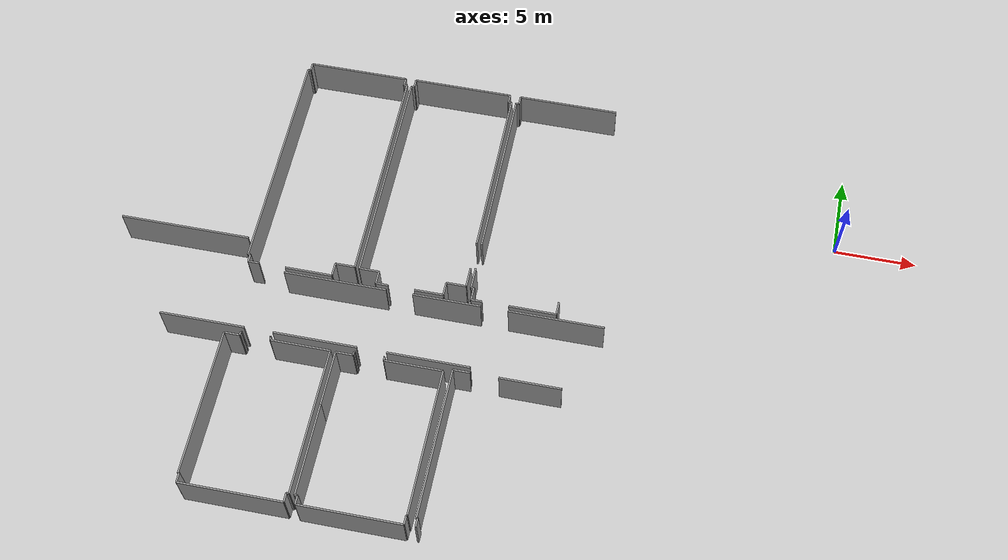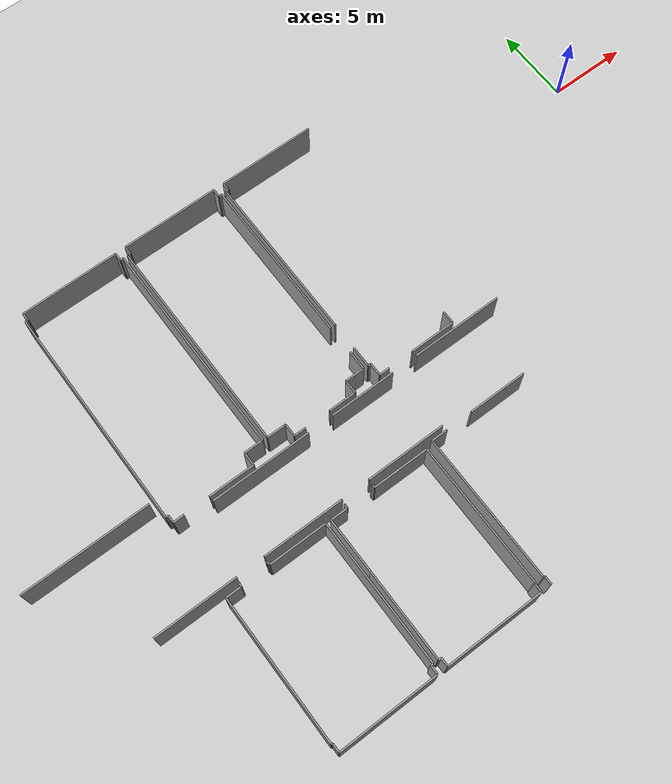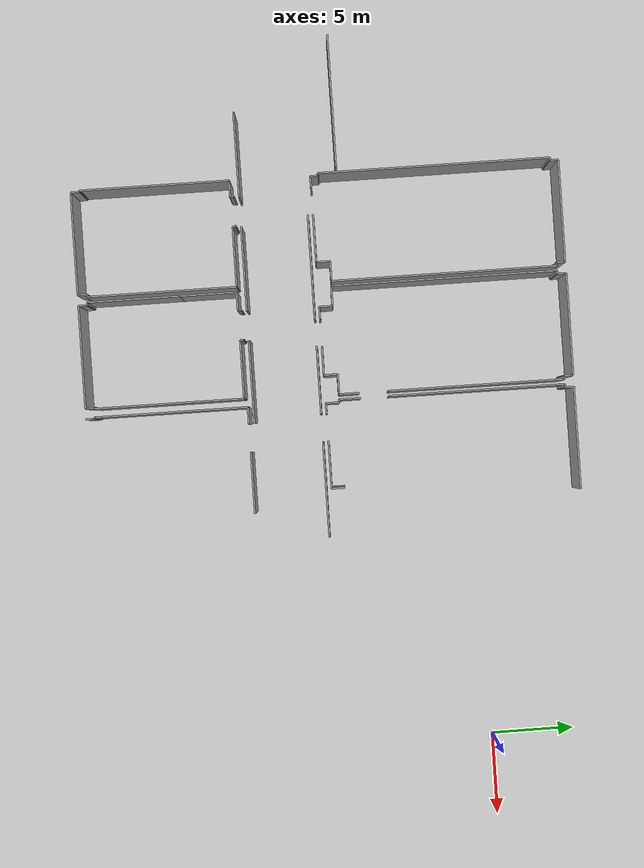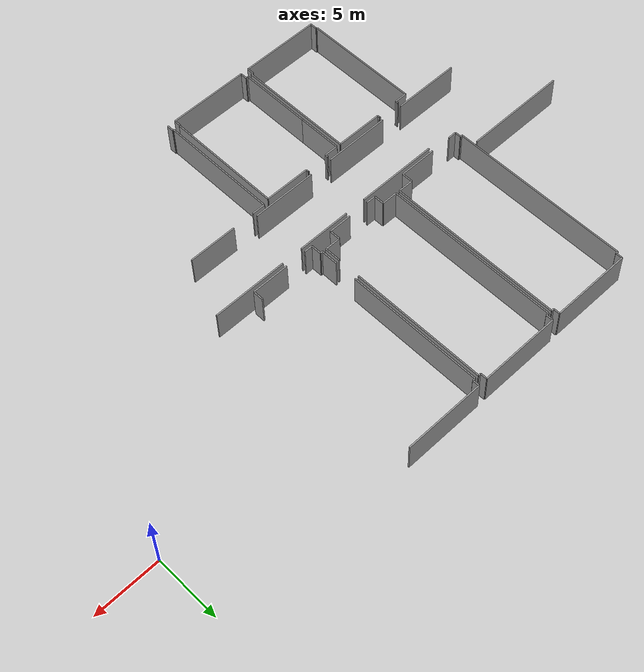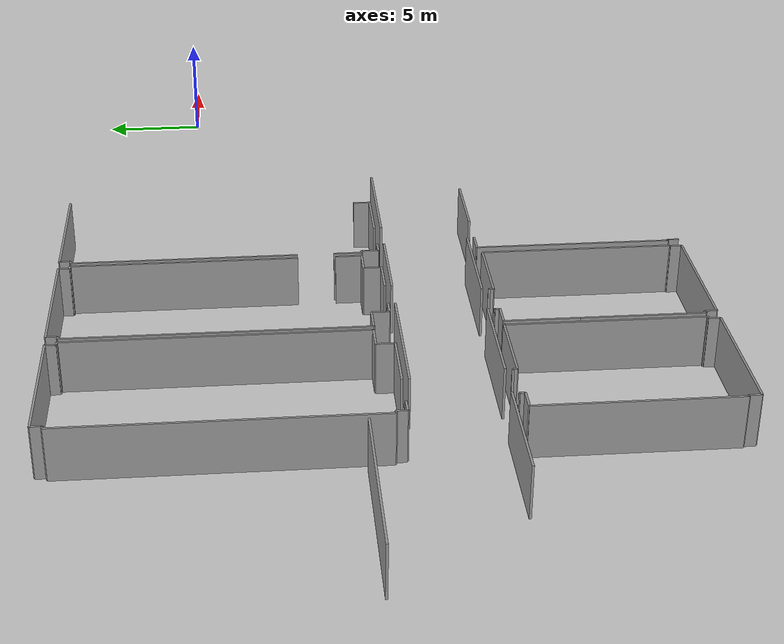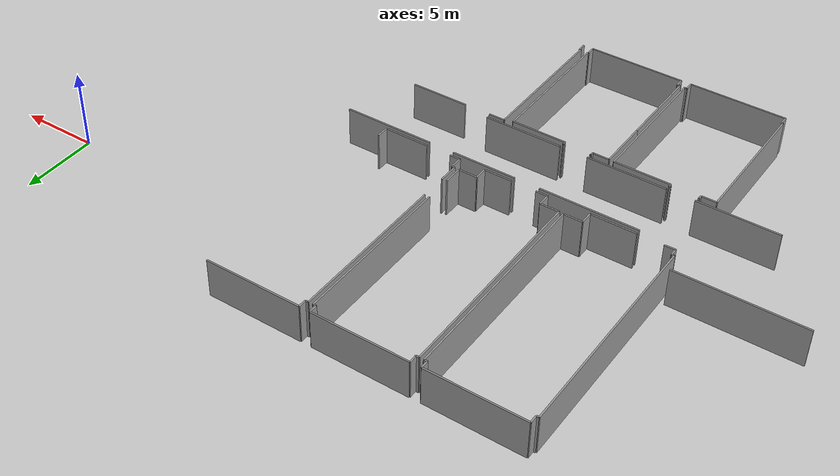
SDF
<sdf version="1.6">
 <world name="default">
  <model name="ground_plane">
   <static>1</static>
   <link name="link">
    <collision name="collision">
     <geometry><plane><normal>0 0 1</normal><size>100 100</size></plane></geometry>
     <surface><friction><ode><mu>100</mu><mu2>50</mu2></ode></friction></surface>
    </collision>
    <visual name="visual">
     <cast_shadows>0</cast_shadows>
     <geometry><plane><normal>0 0 1</normal><size>100 100</size></plane></geometry>
     <material>
      <script><uri>file://media/materials/scripts/gazebo.material</uri><name>Gazebo/Grey</name></script>
     </material>
    </visual>
   </link>
  </model>
  <model name="0510032192_A_40_1_203">
   <static>1</static>
   <link name="Wall_14">
    <collision name="Wall_14_Collision">
     <geometry><box><size>0.551449795701 0.1 2.5</size></box></geometry>
     <pose>0.27572489785 0 1.25 0 0 0</pose>
    </collision>
    <visual name="Wall_14_Visual">
     <pose>0.27572489785 0 1.25 0 0 0</pose>
     <geometry><box><size>0.551449795701 0.1 2.5</size></box></geometry>
     <material>
      <script><uri>file://media/materials/scripts/gazebo.material</uri><name>Gazebo/Grey</name></script>
      <ambient>1 1 1 1</ambient>
     </material>
    </visual>
    <pose>29.868142622 -46.7346648281 0 0 0 1.57079632679</pose>
   </link>
   <link name="Wall_15">
    <collision name="Wall_15_Collision">
     <geometry><box><size>0.0752381376019 0.1 2.5</size></box></geometry>
     <pose>0.037619068801 0 1.25 0 0 0</pose>
    </collision>
    <visual name="Wall_15_Visual">
     <pose>0.037619068801 0 1.25 0 0 0</pose>
     <geometry><box><size>0.0752381376019 0.1 2.5</size></box></geometry>
     <material>
      <script><uri>file://media/materials/scripts/gazebo.material</uri><name>Gazebo/Grey</name></script>
      <ambient>1 1 1 1</ambient>
     </material>
    </visual>
    <pose>29.868142622 -46.1832150324 0 0 0 3.14159265359</pose>
   </link>
   <link name="Wall_16">
    <collision name="Wall_16_Collision">
     <geometry><box><size>8.97557937814 0.1 2.5</size></box></geometry>
     <pose>4.48778968907 0 1.25 0 0 0</pose>
    </collision>
    <visual name="Wall_16_Visual">
     <pose>4.48778968907 0 1.25 0 0 0</pose>
     <geometry><box><size>8.97557937814 0.1 2.5</size></box></geometry>
     <material>
      <script><uri>file://media/materials/scripts/gazebo.material</uri><name>Gazebo/Grey</name></script>
      <ambient>1 1 1 1</ambient>
     </material>
    </visual>
    <pose>29.7929044844 -46.1832150324 0 0 0 1.57079632679</pose>
   </link>
   <link name="Wall_17">
    <collision name="Wall_17_Collision">
     <geometry><box><size>0.956108968208 0.1 2.5</size></box></geometry>
     <pose>0.478054484104 0 1.25 0 0 0</pose>
    </collision>
    <visual name="Wall_17_Visual">
     <pose>0.478054484104 0 1.25 0 0 0</pose>
     <geometry><box><size>0.956108968208 0.1 2.5</size></box></geometry>
     <material>
      <script><uri>file://media/materials/scripts/gazebo.material</uri><name>Gazebo/Grey</name></script>
      <ambient>1 1 1 1</ambient>
     </material>
    </visual>
    <pose>29.7929044844 -37.2076356542 0 0 0 0.0</pose>
   </link>
   <link name="Wall_18">
    <collision name="Wall_18_Collision">
     <geometry><box><size>0.220122389065 0.1 2.5</size></box></geometry>
     <pose>0.110061194533 0 1.25 0 0 0</pose>
    </collision>
    <visual name="Wall_18_Visual">
     <pose>0.110061194533 0 1.25 0 0 0</pose>
     <geometry><box><size>0.220122389065 0.1 2.5</size></box></geometry>
     <material>
      <script><uri>file://media/materials/scripts/gazebo.material</uri><name>Gazebo/Grey</name></script>
      <ambient>1 1 1 1</ambient>
     </material>
    </visual>
    <pose>30.7490134526 -37.2076356542 0 0 0 1.57079632679</pose>
   </link>
   <link name="Wall_19">
    <collision name="Wall_19_Collision">
     <geometry><box><size>0.0706628454504 0.1 2.5</size></box></geometry>
     <pose>0.0353314227252 0 1.25 0 0 0</pose>
    </collision>
    <visual name="Wall_19_Visual">
     <pose>0.0353314227252 0 1.25 0 0 0</pose>
     <geometry><box><size>0.0706628454504 0.1 2.5</size></box></geometry>
     <material>
      <script><uri>file://media/materials/scripts/gazebo.material</uri><name>Gazebo/Grey</name></script>
      <ambient>1 1 1 1</ambient>
     </material>
    </visual>
    <pose>30.7490134526 -36.9875132652 0 0 0 0.0</pose>
   </link>
   <link name="Wall_20">
    <collision name="Wall_20_Collision">
     <geometry><box><size>0.0831178074183 0.1 2.5</size></box></geometry>
     <pose>0.0415589037092 0 1.25 0 0 0</pose>
    </collision>
    <visual name="Wall_20_Visual">
     <pose>0.0415589037092 0 1.25 0 0 0</pose>
     <geometry><box><size>0.0831178074183 0.1 2.5</size></box></geometry>
     <material>
      <script><uri>file://media/materials/scripts/gazebo.material</uri><name>Gazebo/Grey</name></script>
      <ambient>1 1 1 1</ambient>
     </material>
    </visual>
    <pose>32.5064340046 -36.9875132652 0 0 0 0.0</pose>
   </link>
   <link name="Wall_21">
    <collision name="Wall_21_Collision">
     <geometry><box><size>0.186951520967 0.1 2.5</size></box></geometry>
     <pose>0.0934757604835 0 1.25 0 0 0</pose>
    </collision>
    <visual name="Wall_21_Visual">
     <pose>0.0934757604835 0 1.25 0 0 0</pose>
     <geometry><box><size>0.186951520967 0.1 2.5</size></box></geometry>
     <material>
      <script><uri>file://media/materials/scripts/gazebo.material</uri><name>Gazebo/Grey</name></script>
      <ambient>1 1 1 1</ambient>
     </material>
    </visual>
    <pose>32.589551812 -36.9875132652 0 0 0 -1.57079632679</pose>
   </link>
   <link name="Wall_22">
    <collision name="Wall_22_Collision">
     <geometry><box><size>3.60812622723 0.1 2.5</size></box></geometry>
     <pose>1.80406311361 0 1.25 0 0 0</pose>
    </collision>
    <visual name="Wall_22_Visual">
     <pose>1.80406311361 0 1.25 0 0 0</pose>
     <geometry><box><size>3.60812622723 0.1 2.5</size></box></geometry>
     <material>
      <script><uri>file://media/materials/scripts/gazebo.material</uri><name>Gazebo/Grey</name></script>
      <ambient>1 1 1 1</ambient>
     </material>
    </visual>
    <pose>32.589551812 -37.1744647861 0 0 0 0.0</pose>
   </link>
   <link name="Wall_23">
    <collision name="Wall_23_Collision">
     <geometry><box><size>9.00875024624 0.1 2.5</size></box></geometry>
     <pose>4.50437512312 0 1.25 0 0 0</pose>
    </collision>
    <visual name="Wall_23_Visual">
     <pose>4.50437512312 0 1.25 0 0 0</pose>
     <geometry><box><size>9.00875024624 0.1 2.5</size></box></geometry>
     <material>
      <script><uri>file://media/materials/scripts/gazebo.material</uri><name>Gazebo/Grey</name></script>
      <ambient>1 1 1 1</ambient>
     </material>
    </visual>
    <pose>36.1976780392 -37.1744647861 0 0 0 -1.57079632679</pose>
   </link>
   <link name="Wall_24">
    <collision name="Wall_24_Collision">
     <geometry><box><size>0.154034835766 0.1 2.5</size></box></geometry>
     <pose>0.077017417883 0 1.25 0 0 0</pose>
    </collision>
    <visual name="Wall_24_Visual">
     <pose>0.077017417883 0 1.25 0 0 0</pose>
     <geometry><box><size>0.154034835766 0.1 2.5</size></box></geometry>
     <material>
      <script><uri>file://media/materials/scripts/gazebo.material</uri><name>Gazebo/Grey</name></script>
      <ambient>1 1 1 1</ambient>
     </material>
    </visual>
    <pose>36.1976780392 -46.1832150324 0 0 0 3.14159265359</pose>
   </link>
   <link name="Wall_25">
    <collision name="Wall_25_Collision">
     <geometry><box><size>0.5420450285 0.1 2.5</size></box></geometry>
     <pose>0.27102251425 0 1.25 0 0 0</pose>
    </collision>
    <visual name="Wall_25_Visual">
     <pose>0.27102251425 0 1.25 0 0 0</pose>
     <geometry><box><size>0.5420450285 0.1 2.5</size></box></geometry>
     <material>
      <script><uri>file://media/materials/scripts/gazebo.material</uri><name>Gazebo/Grey</name></script>
      <ambient>1 1 1 1</ambient>
     </material>
    </visual>
    <pose>36.0436432035 -46.1832150324 0 0 0 -1.57079632679</pose>
   </link>
   <link name="Wall_26">
    <collision name="Wall_26_Collision">
     <geometry><box><size>6.17550774277 0.1 2.5</size></box></geometry>
     <pose>3.08775387139 0 1.25 0 0 0</pose>
    </collision>
    <visual name="Wall_26_Visual">
     <pose>3.08775387139 0 1.25 0 0 0</pose>
     <geometry><box><size>6.17550774277 0.1 2.5</size></box></geometry>
     <material>
      <script><uri>file://media/materials/scripts/gazebo.material</uri><name>Gazebo/Grey</name></script>
      <ambient>1 1 1 1</ambient>
     </material>
    </visual>
    <pose>36.0436432035 -46.7252600609 0 0 0 -3.140069739</pose>
   </link>
   <link name="Wall_27">
    <collision name="Wall_27_Collision">
     <geometry><box><size>0.526539871765 0.1 2.5</size></box></geometry>
     <pose>0.263269935882 0 1.25 0 0 0</pose>
    </collision>
    <visual name="Wall_27_Visual">
     <pose>0.263269935882 0 1.25 0 0 0</pose>
     <geometry><box><size>0.526539871765 0.1 2.5</size></box></geometry>
     <material>
      <script><uri>file://media/materials/scripts/gazebo.material</uri><name>Gazebo/Grey</name></script>
      <ambient>1 1 1 1</ambient>
     </material>
    </visual>
    <pose>36.6953681522 -46.7264038839 0 0 0 1.57079632679</pose>
   </link>
   <link name="Wall_28">
    <collision name="Wall_28_Collision">
     <geometry><box><size>0.175513290588 0.1 2.5</size></box></geometry>
     <pose>0.0877566452941 0 1.25 0 0 0</pose>
    </collision>
    <visual name="Wall_28_Visual">
     <pose>0.0877566452941 0 1.25 0 0 0</pose>
     <geometry><box><size>0.175513290588 0.1 2.5</size></box></geometry>
     <material>
      <script><uri>file://media/materials/scripts/gazebo.material</uri><name>Gazebo/Grey</name></script>
      <ambient>1 1 1 1</ambient>
     </material>
    </visual>
    <pose>36.6953681522 -46.1998640121 0 0 0 3.14159265359</pose>
   </link>
   <link name="Wall_29">
    <collision name="Wall_29_Collision">
     <geometry><box><size>5.5946926611 0.1 2.5</size></box></geometry>
     <pose>2.79734633055 0 1.25 0 0 0</pose>
    </collision>
    <visual name="Wall_29_Visual">
     <pose>2.79734633055 0 1.25 0 0 0</pose>
     <geometry><box><size>5.5946926611 0.1 2.5</size></box></geometry>
     <material>
      <script><uri>file://media/materials/scripts/gazebo.material</uri><name>Gazebo/Grey</name></script>
      <ambient>1 1 1 1</ambient>
     </material>
    </visual>
    <pose>36.5198548616 -46.1998640121 0 0 0 1.57079632679</pose>
   </link>
   <link name="Wall_30">
    <collision name="Wall_30_Collision">
     <geometry><box><size>3.4035089949 0.1 2.5</size></box></geometry>
     <pose>1.70175449745 0 1.25 0 0 0</pose>
    </collision>
    <visual name="Wall_30_Visual">
     <pose>1.70175449745 0 1.25 0 0 0</pose>
     <geometry><box><size>3.4035089949 0.1 2.5</size></box></geometry>
     <material>
      <script><uri>file://media/materials/scripts/gazebo.material</uri><name>Gazebo/Grey</name></script>
      <ambient>1 1 1 1</ambient>
     </material>
    </visual>
    <pose>36.5198548616 -40.605171351 0 0 0 1.57079632679</pose>
   </link>
   <link name="Wall_31">
    <collision name="Wall_31_Collision">
     <geometry><box><size>1.06642434564 0.1 2.5</size></box></geometry>
     <pose>0.533212172819 0 1.25 0 0 0</pose>
    </collision>
    <visual name="Wall_31_Visual">
     <pose>0.533212172819 0 1.25 0 0 0</pose>
     <geometry><box><size>1.06642434564 0.1 2.5</size></box></geometry>
     <material>
      <script><uri>file://media/materials/scripts/gazebo.material</uri><name>Gazebo/Grey</name></script>
      <ambient>1 1 1 1</ambient>
     </material>
    </visual>
    <pose>36.5198548616 -37.2016623561 0 0 0 0.0</pose>
   </link>
   <link name="Wall_32">
    <collision name="Wall_32_Collision">
     <geometry><box><size>0.215038731119 0.1 2.5</size></box></geometry>
     <pose>0.107519365559 0 1.25 0 0 0</pose>
    </collision>
    <visual name="Wall_32_Visual">
     <pose>0.107519365559 0 1.25 0 0 0</pose>
     <geometry><box><size>0.215038731119 0.1 2.5</size></box></geometry>
     <material>
      <script><uri>file://media/materials/scripts/gazebo.material</uri><name>Gazebo/Grey</name></script>
      <ambient>1 1 1 1</ambient>
     </material>
    </visual>
    <pose>37.5862792072 -37.2016623561 0 0 0 1.57079632679</pose>
   </link>
   <link name="Wall_33">
    <collision name="Wall_33_Collision">
     <geometry><box><size>0.0669771934395 0.1 2.5</size></box></geometry>
     <pose>0.0334885967198 0 1.25 0 0 0</pose>
    </collision>
    <visual name="Wall_33_Visual">
     <pose>0.0334885967198 0 1.25 0 0 0</pose>
     <geometry><box><size>0.0669771934395 0.1 2.5</size></box></geometry>
     <material>
      <script><uri>file://media/materials/scripts/gazebo.material</uri><name>Gazebo/Grey</name></script>
      <ambient>1 1 1 1</ambient>
     </material>
    </visual>
    <pose>37.5862792072 -36.986623625 0 0 0 0.0</pose>
   </link>
   <link name="Wall_34">
    <collision name="Wall_34_Collision">
     <geometry><box><size>0.0621477183908 0.1 2.5</size></box></geometry>
     <pose>0.0310738591954 0 1.25 0 0 0</pose>
    </collision>
    <visual name="Wall_34_Visual">
     <pose>0.0310738591954 0 1.25 0 0 0</pose>
     <geometry><box><size>0.0621477183908 0.1 2.5</size></box></geometry>
     <material>
      <script><uri>file://media/materials/scripts/gazebo.material</uri><name>Gazebo/Grey</name></script>
      <ambient>1 1 1 1</ambient>
     </material>
    </visual>
    <pose>39.3445893993 -36.986623625 0 0 0 0.0</pose>
   </link>
   <link name="Wall_35">
    <collision name="Wall_35_Collision">
     <geometry><box><size>0.195975013821 0.1 2.5</size></box></geometry>
     <pose>0.0979875069106 0 1.25 0 0 0</pose>
    </collision>
    <visual name="Wall_35_Visual">
     <pose>0.0979875069106 0 1.25 0 0 0</pose>
     <geometry><box><size>0.195975013821 0.1 2.5</size></box></geometry>
     <material>
      <script><uri>file://media/materials/scripts/gazebo.material</uri><name>Gazebo/Grey</name></script>
      <ambient>1 1 1 1</ambient>
     </material>
    </visual>
    <pose>39.4067371177 -36.986623625 0 0 0 -1.57079632679</pose>
   </link>
   <link name="Wall_36">
    <collision name="Wall_36_Collision">
     <geometry><box><size>3.51522237826 0.1 2.5</size></box></geometry>
     <pose>1.75761118913 0 1.25 0 0 0</pose>
    </collision>
    <visual name="Wall_36_Visual">
     <pose>1.75761118913 0 1.25 0 0 0</pose>
     <geometry><box><size>3.51522237826 0.1 2.5</size></box></geometry>
     <material>
      <script><uri>file://media/materials/scripts/gazebo.material</uri><name>Gazebo/Grey</name></script>
      <ambient>1 1 1 1</ambient>
     </material>
    </visual>
    <pose>39.4067371177 -37.1825986389 0 0 0 0.0</pose>
   </link>
   <link name="Wall_37">
    <collision name="Wall_37_Collision">
     <geometry><box><size>8.99438891254 0.1 2.5</size></box></geometry>
     <pose>4.49719445627 0 1.25 0 0 0</pose>
    </collision>
    <visual name="Wall_37_Visual">
     <pose>4.49719445627 0 1.25 0 0 0</pose>
     <geometry><box><size>8.99438891254 0.1 2.5</size></box></geometry>
     <material>
      <script><uri>file://media/materials/scripts/gazebo.material</uri><name>Gazebo/Grey</name></script>
      <ambient>1 1 1 1</ambient>
     </material>
    </visual>
    <pose>42.921959496 -37.1825986389 0 0 0 -1.57079632679</pose>
   </link>
   <link name="Wall_38">
    <collision name="Wall_38_Collision">
     <geometry><box><size>0.0536325913311 0.1 2.5</size></box></geometry>
     <pose>0.0268162956655 0 1.25 0 0 0</pose>
    </collision>
    <visual name="Wall_38_Visual">
     <pose>0.0268162956655 0 1.25 0 0 0</pose>
     <geometry><box><size>0.0536325913311 0.1 2.5</size></box></geometry>
     <material>
      <script><uri>file://media/materials/scripts/gazebo.material</uri><name>Gazebo/Grey</name></script>
      <ambient>1 1 1 1</ambient>
     </material>
    </visual>
    <pose>42.921959496 -46.1769875514 0 0 0 3.14159265359</pose>
   </link>
   <link name="Wall_39">
    <collision name="Wall_39_Collision">
     <geometry><box><size>0.544968131819 0.1 2.5</size></box></geometry>
     <pose>0.27248406591 0 1.25 0 0 0</pose>
    </collision>
    <visual name="Wall_39_Visual">
     <pose>0.27248406591 0 1.25 0 0 0</pose>
     <geometry><box><size>0.544968131819 0.1 2.5</size></box></geometry>
     <material>
      <script><uri>file://media/materials/scripts/gazebo.material</uri><name>Gazebo/Grey</name></script>
      <ambient>1 1 1 1</ambient>
     </material>
    </visual>
    <pose>42.8683269046 -46.1769875514 0 0 0 -1.57079632679</pose>
   </link>
   <link name="Wall_40">
    <collision name="Wall_40_Collision">
     <geometry><box><size>6.17296035514 0.1 2.5</size></box></geometry>
     <pose>3.08648017757 0 1.25 0 0 0</pose>
    </collision>
    <visual name="Wall_40_Visual">
     <pose>3.08648017757 0 1.25 0 0 0</pose>
     <geometry><box><size>6.17296035514 0.1 2.5</size></box></geometry>
     <material>
      <script><uri>file://media/materials/scripts/gazebo.material</uri><name>Gazebo/Grey</name></script>
      <ambient>1 1 1 1</ambient>
     </material>
    </visual>
    <pose>42.8683269046 -46.7219556832 0 0 0 -3.14087205912</pose>
   </link>
   <link name="Wall_41">
    <collision name="Wall_41_Collision">
     <geometry><box><size>0.534800815927 0.1 2.5</size></box></geometry>
     <pose>0.267400407964 0 1.25 0 0 0</pose>
    </collision>
    <visual name="Wall_41_Visual">
     <pose>0.267400407964 0 1.25 0 0 0</pose>
     <geometry><box><size>0.534800815927 0.1 2.5</size></box></geometry>
     <material>
      <script><uri>file://media/materials/scripts/gazebo.material</uri><name>Gazebo/Grey</name></script>
      <ambient>1 1 1 1</ambient>
     </material>
    </visual>
    <pose>43.5225936823 -46.7346648281 0 0 0 1.57079632679</pose>
   </link>
   <link name="Wall_42">
    <collision name="Wall_42_Collision">
     <geometry><box><size>0.0751110461533 0.1 2.5</size></box></geometry>
     <pose>0.0375555230766 0 1.25 0 0 0</pose>
    </collision>
    <visual name="Wall_42_Visual">
     <pose>0.0375555230766 0 1.25 0 0 0</pose>
     <geometry><box><size>0.0751110461533 0.1 2.5</size></box></geometry>
     <material>
      <script><uri>file://media/materials/scripts/gazebo.material</uri><name>Gazebo/Grey</name></script>
      <ambient>1 1 1 1</ambient>
     </material>
    </visual>
    <pose>43.5225936823 -46.1998640121 0 0 0 3.14159265359</pose>
   </link>
   <link name="Wall_43">
    <collision name="Wall_43_Collision">
     <geometry><box><size>9.2053607173 0.1 2.5</size></box></geometry>
     <pose>4.60268035865 0 1.25 0 0 0</pose>
    </collision>
    <visual name="Wall_43_Visual">
     <pose>4.60268035865 0 1.25 0 0 0</pose>
     <geometry><box><size>9.2053607173 0.1 2.5</size></box></geometry>
     <material>
      <script><uri>file://media/materials/scripts/gazebo.material</uri><name>Gazebo/Grey</name></script>
      <ambient>1 1 1 1</ambient>
     </material>
    </visual>
    <pose>43.4474826361 -46.1998640121 0 0 0 1.57079632679</pose>
   </link>
   <link name="Wall_44">
    <collision name="Wall_44_Collision">
     <geometry><box><size>1.02562799062 0.1 2.5</size></box></geometry>
     <pose>0.51281399531 0 1.25 0 0 0</pose>
    </collision>
    <visual name="Wall_44_Visual">
     <pose>0.51281399531 0 1.25 0 0 0</pose>
     <geometry><box><size>1.02562799062 0.1 2.5</size></box></geometry>
     <material>
      <script><uri>file://media/materials/scripts/gazebo.material</uri><name>Gazebo/Grey</name></script>
      <ambient>1 1 1 1</ambient>
     </material>
    </visual>
    <pose>43.4474826361 -36.9945032948 0 0 0 0.0</pose>
   </link>
   <link name="Wall_45">
    <collision name="Wall_45_Collision">
     <geometry><box><size>3.69785278998 0.1 2.5</size></box></geometry>
     <pose>1.84892639499 0 1.25 0 0 0</pose>
    </collision>
    <visual name="Wall_45_Visual">
     <pose>1.84892639499 0 1.25 0 0 0</pose>
     <geometry><box><size>3.69785278998 0.1 2.5</size></box></geometry>
     <material>
      <script><uri>file://media/materials/scripts/gazebo.material</uri><name>Gazebo/Grey</name></script>
      <ambient>1 1 1 1</ambient>
     </material>
    </visual>
    <pose>46.1598683333 -36.9945032948 0 0 0 0.0</pose>
   </link>
   <link name="Wall_212">
    <collision name="Wall_212_Collision">
     <geometry><box><size>7.94296135785 0.1 2.5</size></box></geometry>
     <pose>3.97148067892 0 1.25 0 0 0</pose>
    </collision>
    <visual name="Wall_212_Visual">
     <pose>3.97148067892 0 1.25 0 0 0</pose>
     <geometry><box><size>7.94296135785 0.1 2.5</size></box></geometry>
     <material>
      <script><uri>file://media/materials/scripts/gazebo.material</uri><name>Gazebo/Grey</name></script>
      <ambient>1 1 1 1</ambient>
     </material>
    </visual>
    <pose>29.404131743 -30.7404601981 0 0 0 3.14159265359</pose>
   </link>
   <link name="Wall_221">
    <collision name="Wall_221_Collision">
     <geometry><box><size>6.26624387578 0.1 2.5</size></box></geometry>
     <pose>3.13312193789 0 1.25 0 0 0</pose>
    </collision>
    <visual name="Wall_221_Visual">
     <pose>3.13312193789 0 1.25 0 0 0</pose>
     <geometry><box><size>6.26624387578 0.1 2.5</size></box></geometry>
     <material>
      <script><uri>file://media/materials/scripts/gazebo.material</uri><name>Gazebo/Grey</name></script>
      <ambient>1 1 1 1</ambient>
     </material>
    </visual>
    <pose>32.1706583972 -32.6294203994 0 0 0 0.0</pose>
   </link>
   <link name="Wall_222">
    <collision name="Wall_222_Collision">
     <geometry><box><size>4.11712747908 0.1 2.5</size></box></geometry>
     <pose>2.05856373954 0 1.25 0 0 0</pose>
    </collision>
    <visual name="Wall_222_Visual">
     <pose>2.05856373954 0 1.25 0 0 0</pose>
     <geometry><box><size>4.11712747908 0.1 2.5</size></box></geometry>
     <material>
      <script><uri>file://media/materials/scripts/gazebo.material</uri><name>Gazebo/Grey</name></script>
      <ambient>1 1 1 1</ambient>
     </material>
    </visual>
    <pose>40.0489302077 -32.6294203994 0 0 0 0.0</pose>
   </link>
   <link name="Wall_223">
    <collision name="Wall_223_Collision">
     <geometry><box><size>5.76880794576 0.1 2.5</size></box></geometry>
     <pose>2.88440397288 0 1.25 0 0 0</pose>
    </collision>
    <visual name="Wall_223_Visual">
     <pose>2.88440397288 0 1.25 0 0 0</pose>
     <geometry><box><size>5.76880794576 0.1 2.5</size></box></geometry>
     <material>
      <script><uri>file://media/materials/scripts/gazebo.material</uri><name>Gazebo/Grey</name></script>
      <ambient>1 1 1 1</ambient>
     </material>
    </visual>
    <pose>45.8192632509 -32.6294203994 0 0 0 0.0</pose>
   </link>
   <link name="Wall_246">
    <collision name="Wall_246_Collision">
     <geometry><box><size>4.99037282276 0.1 2.5</size></box></geometry>
     <pose>2.49518641138 0 1.25 0 0 0</pose>
    </collision>
    <visual name="Wall_246_Visual">
     <pose>2.49518641138 0 1.25 0 0 0</pose>
     <geometry><box><size>4.99037282276 0.1 2.5</size></box></geometry>
     <material>
      <script><uri>file://media/materials/scripts/gazebo.material</uri><name>Gazebo/Grey</name></script>
      <ambient>1 1 1 1</ambient>
     </material>
    </visual>
    <pose>44.426722248 -36.6643197112 0 0 0 3.14159265359</pose>
   </link>
   <link name="Wall_247">
    <collision name="Wall_247_Collision">
     <geometry><box><size>5.04629306017 0.1 2.5</size></box></geometry>
     <pose>2.52314653009 0 1.25 0 0 0</pose>
    </collision>
    <visual name="Wall_247_Visual">
     <pose>2.52314653009 0 1.25 0 0 0</pose>
     <geometry><box><size>5.04629306017 0.1 2.5</size></box></geometry>
     <material>
      <script><uri>file://media/materials/scripts/gazebo.material</uri><name>Gazebo/Grey</name></script>
      <ambient>1 1 1 1</ambient>
     </material>
    </visual>
    <pose>37.6480456512 -36.6643197112 0 0 0 3.14159265359</pose>
   </link>
   <link name="Wall_248">
    <collision name="Wall_248_Collision">
     <geometry><box><size>5.14949131648 0.1 2.5</size></box></geometry>
     <pose>2.57474565824 0 1.25 0 0 0</pose>
    </collision>
    <visual name="Wall_248_Visual">
     <pose>2.57474565824 0 1.25 0 0 0</pose>
     <geometry><box><size>5.14949131648 0.1 2.5</size></box></geometry>
     <material>
      <script><uri>file://media/materials/scripts/gazebo.material</uri><name>Gazebo/Grey</name></script>
      <ambient>1 1 1 1</ambient>
     </material>
    </visual>
    <pose>30.8543722636 -36.6643197112 0 0 0 3.14159265359</pose>
   </link>
   <link name="Wall_251">
    <collision name="Wall_251_Collision">
     <geometry><box><size>0.480532767353 0.1 2.5</size></box></geometry>
     <pose>0.240266383676 0 1.25 0 0 0</pose>
    </collision>
    <visual name="Wall_251_Visual">
     <pose>0.240266383676 0 1.25 0 0 0</pose>
     <geometry><box><size>0.480532767353 0.1 2.5</size></box></geometry>
     <material>
      <script><uri>file://media/materials/scripts/gazebo.material</uri><name>Gazebo/Grey</name></script>
      <ambient>1 1 1 1</ambient>
     </material>
    </visual>
    <pose>29.861915141 -32.3302471293 0 0 0 1.57079632679</pose>
   </link>
   <link name="Wall_252">
    <collision name="Wall_252_Collision">
     <geometry><box><size>0.153780652869 0.1 2.5</size></box></geometry>
     <pose>0.0768903264344 0 1.25 0 0 0</pose>
    </collision>
    <visual name="Wall_252_Visual">
     <pose>0.0768903264344 0 1.25 0 0 0</pose>
     <geometry><box><size>0.153780652869 0.1 2.5</size></box></geometry>
     <material>
      <script><uri>file://media/materials/scripts/gazebo.material</uri><name>Gazebo/Grey</name></script>
      <ambient>1 1 1 1</ambient>
     </material>
    </visual>
    <pose>29.861915141 -31.849714362 0 0 0 3.14159265359</pose>
   </link>
   <link name="Wall_253">
    <collision name="Wall_253_Collision">
     <geometry><box><size>13.9344335216 0.1 2.5</size></box></geometry>
     <pose>6.96721676082 0 1.25 0 0 0</pose>
    </collision>
    <visual name="Wall_253_Visual">
     <pose>6.96721676082 0 1.25 0 0 0</pose>
     <geometry><box><size>13.9344335216 0.1 2.5</size></box></geometry>
     <material>
      <script><uri>file://media/materials/scripts/gazebo.material</uri><name>Gazebo/Grey</name></script>
      <ambient>1 1 1 1</ambient>
     </material>
    </visual>
    <pose>29.7081344882 -31.849714362 0 0 0 1.57079632679</pose>
   </link>
   <link name="Wall_254">
    <collision name="Wall_254_Collision">
     <geometry><box><size>0.163312511518 0.1 2.5</size></box></geometry>
     <pose>0.0816562557588 0 1.25 0 0 0</pose>
    </collision>
    <visual name="Wall_254_Visual">
     <pose>0.0816562557588 0 1.25 0 0 0</pose>
     <geometry><box><size>0.163312511518 0.1 2.5</size></box></geometry>
     <material>
      <script><uri>file://media/materials/scripts/gazebo.material</uri><name>Gazebo/Grey</name></script>
      <ambient>1 1 1 1</ambient>
     </material>
    </visual>
    <pose>29.7081344882 -17.9152808403 0 0 0 0.0</pose>
   </link>
   <link name="Wall_255">
    <collision name="Wall_255_Collision">
     <geometry><box><size>0.509255434748 0.1 2.5</size></box></geometry>
     <pose>0.254627717374 0 1.25 0 0 0</pose>
    </collision>
    <visual name="Wall_255_Visual">
     <pose>0.254627717374 0 1.25 0 0 0</pose>
     <geometry><box><size>0.509255434748 0.1 2.5</size></box></geometry>
     <material>
      <script><uri>file://media/materials/scripts/gazebo.material</uri><name>Gazebo/Grey</name></script>
      <ambient>1 1 1 1</ambient>
     </material>
    </visual>
    <pose>29.8714469997 -17.9152808403 0 0 0 1.57079632679</pose>
   </link>
   <link name="Wall_256">
    <collision name="Wall_256_Collision">
     <geometry><box><size>6.15542013256 0.1 2.5</size></box></geometry>
     <pose>3.07771006628 0 1.25 0 0 0</pose>
    </collision>
    <visual name="Wall_256_Visual">
     <pose>3.07771006628 0 1.25 0 0 0</pose>
     <geometry><box><size>6.15542013256 0.1 2.5</size></box></geometry>
     <material>
      <script><uri>file://media/materials/scripts/gazebo.material</uri><name>Gazebo/Grey</name></script>
      <ambient>1 1 1 1</ambient>
     </material>
    </visual>
    <pose>29.8714469997 -17.4060254056 0 0 0 0.0</pose>
   </link>
   <link name="Wall_257">
    <collision name="Wall_257_Collision">
     <geometry><box><size>0.498833935959 0.1 2.5</size></box></geometry>
     <pose>0.249416967979 0 1.25 0 0 0</pose>
    </collision>
    <visual name="Wall_257_Visual">
     <pose>0.249416967979 0 1.25 0 0 0</pose>
     <geometry><box><size>0.498833935959 0.1 2.5</size></box></geometry>
     <material>
      <script><uri>file://media/materials/scripts/gazebo.material</uri><name>Gazebo/Grey</name></script>
      <ambient>1 1 1 1</ambient>
     </material>
    </visual>
    <pose>36.0268671322 -17.4060254056 0 0 0 -1.57079632679</pose>
   </link>
   <link name="Wall_258">
    <collision name="Wall_258_Collision">
     <geometry><box><size>0.200550305973 0.1 2.5</size></box></geometry>
     <pose>0.100275152986 0 1.25 0 0 0</pose>
    </collision>
    <visual name="Wall_258_Visual">
     <pose>0.100275152986 0 1.25 0 0 0</pose>
     <geometry><box><size>0.200550305973 0.1 2.5</size></box></geometry>
     <material>
      <script><uri>file://media/materials/scripts/gazebo.material</uri><name>Gazebo/Grey</name></script>
      <ambient>1 1 1 1</ambient>
     </material>
    </visual>
    <pose>36.0268671322 -17.9048593415 0 0 0 0.0</pose>
   </link>
   <link name="Wall_259">
    <collision name="Wall_259_Collision">
     <geometry><box><size>13.5700623384 0.1 2.5</size></box></geometry>
     <pose>6.78503116918 0 1.25 0 0 0</pose>
    </collision>
    <visual name="Wall_259_Visual">
     <pose>6.78503116918 0 1.25 0 0 0</pose>
     <geometry><box><size>13.5700623384 0.1 2.5</size></box></geometry>
     <material>
      <script><uri>file://media/materials/scripts/gazebo.material</uri><name>Gazebo/Grey</name></script>
      <ambient>1 1 1 1</ambient>
     </material>
    </visual>
    <pose>36.2274174382 -17.9048593415 0 0 0 -1.57079632679</pose>
   </link>
   <link name="Wall_260">
    <collision name="Wall_260_Collision">
     <geometry><box><size>1.19542216602 0.1 2.5</size></box></geometry>
     <pose>0.59771108301 0 1.25 0 0 0</pose>
    </collision>
    <visual name="Wall_260_Visual">
     <pose>0.59771108301 0 1.25 0 0 0</pose>
     <geometry><box><size>1.19542216602 0.1 2.5</size></box></geometry>
     <material>
      <script><uri>file://media/materials/scripts/gazebo.material</uri><name>Gazebo/Grey</name></script>
      <ambient>1 1 1 1</ambient>
     </material>
    </visual>
    <pose>36.2274174382 -31.4749216799 0 0 0 3.14159265359</pose>
   </link>
   <link name="Wall_261">
    <collision name="Wall_261_Collision">
     <geometry><box><size>0.838803561102 0.1 2.5</size></box></geometry>
     <pose>0.419401780551 0 1.25 0 0 0</pose>
    </collision>
    <visual name="Wall_261_Visual">
     <pose>0.419401780551 0 1.25 0 0 0</pose>
     <geometry><box><size>0.838803561102 0.1 2.5</size></box></geometry>
     <material>
      <script><uri>file://media/materials/scripts/gazebo.material</uri><name>Gazebo/Grey</name></script>
      <ambient>1 1 1 1</ambient>
     </material>
    </visual>
    <pose>35.0319952722 -31.4749216799 0 0 0 -1.57079632679</pose>
   </link>
   <link name="Wall_262">
    <collision name="Wall_262_Collision">
     <geometry><box><size>2.87417311126 0.1 2.5</size></box></geometry>
     <pose>1.43708655563 0 1.25 0 0 0</pose>
    </collision>
    <visual name="Wall_262_Visual">
     <pose>1.43708655563 0 1.25 0 0 0</pose>
     <geometry><box><size>2.87417311126 0.1 2.5</size></box></geometry>
     <material>
      <script><uri>file://media/materials/scripts/gazebo.material</uri><name>Gazebo/Grey</name></script>
      <ambient>1 1 1 1</ambient>
     </material>
    </visual>
    <pose>35.0319952722 -32.313725241 0 0 0 3.14159265359</pose>
   </link>
   <link name="Wall_263">
    <collision name="Wall_263_Collision">
     <geometry><box><size>0.675311914168 0.1 2.5</size></box></geometry>
     <pose>0.337655957084 0 1.25 0 0 0</pose>
    </collision>
    <visual name="Wall_263_Visual">
     <pose>0.337655957084 0 1.25 0 0 0</pose>
     <geometry><box><size>0.675311914168 0.1 2.5</size></box></geometry>
     <material>
      <script><uri>file://media/materials/scripts/gazebo.material</uri><name>Gazebo/Grey</name></script>
      <ambient>1 1 1 1</ambient>
     </material>
    </visual>
    <pose>30.5370249163 -32.313725241 0 0 0 -3.11712464606</pose>
   </link>
   <link name="Wall_264">
    <collision name="Wall_264_Collision">
     <geometry><box><size>0.802201223891 0.1 2.5</size></box></geometry>
     <pose>0.401100611945 0 1.25 0 0 0</pose>
    </collision>
    <visual name="Wall_264_Visual">
     <pose>0.401100611945 0 1.25 0 0 0</pose>
     <geometry><box><size>0.802201223891 0.1 2.5</size></box></geometry>
     <material>
      <script><uri>file://media/materials/scripts/gazebo.material</uri><name>Gazebo/Grey</name></script>
      <ambient>1 1 1 1</ambient>
     </material>
    </visual>
    <pose>37.7232837889 -32.3114375949 0 0 0 1.57079632679</pose>
   </link>
   <link name="Wall_265">
    <collision name="Wall_265_Collision">
     <geometry><box><size>1.21168987145 0.1 2.5</size></box></geometry>
     <pose>0.605844935723 0 1.25 0 0 0</pose>
    </collision>
    <visual name="Wall_265_Visual">
     <pose>0.605844935723 0 1.25 0 0 0</pose>
     <geometry><box><size>1.21168987145 0.1 2.5</size></box></geometry>
     <material>
      <script><uri>file://media/materials/scripts/gazebo.material</uri><name>Gazebo/Grey</name></script>
      <ambient>1 1 1 1</ambient>
     </material>
    </visual>
    <pose>37.7232837889 -31.509236371 0 0 0 3.14159265359</pose>
   </link>
   <link name="Wall_266">
    <collision name="Wall_266_Collision">
     <geometry><box><size>13.5948451708 0.1 2.5</size></box></geometry>
     <pose>6.79742258542 0 1.25 0 0 0</pose>
    </collision>
    <visual name="Wall_266_Visual">
     <pose>6.79742258542 0 1.25 0 0 0</pose>
     <geometry><box><size>13.5948451708 0.1 2.5</size></box></geometry>
     <material>
      <script><uri>file://media/materials/scripts/gazebo.material</uri><name>Gazebo/Grey</name></script>
      <ambient>1 1 1 1</ambient>
     </material>
    </visual>
    <pose>36.5115939174 -31.509236371 0 0 0 1.57079632679</pose>
   </link>
   <link name="Wall_267">
    <collision name="Wall_267_Collision">
     <geometry><box><size>0.190128807183 0.1 2.5</size></box></geometry>
     <pose>0.0950644035916 0 1.25 0 0 0</pose>
    </collision>
    <visual name="Wall_267_Visual">
     <pose>0.0950644035916 0 1.25 0 0 0</pose>
     <geometry><box><size>0.190128807183 0.1 2.5</size></box></geometry>
     <material>
      <script><uri>file://media/materials/scripts/gazebo.material</uri><name>Gazebo/Grey</name></script>
      <ambient>1 1 1 1</ambient>
     </material>
    </visual>
    <pose>36.5115939174 -17.9143912002 0 0 0 0.0</pose>
   </link>
   <link name="Wall_268">
    <collision name="Wall_268_Collision">
     <geometry><box><size>0.530479706673 0.1 2.5</size></box></geometry>
     <pose>0.265239853336 0 1.25 0 0 0</pose>
    </collision>
    <visual name="Wall_268_Visual">
     <pose>0.265239853336 0 1.25 0 0 0</pose>
     <geometry><box><size>0.530479706673 0.1 2.5</size></box></geometry>
     <material>
      <script><uri>file://media/materials/scripts/gazebo.material</uri><name>Gazebo/Grey</name></script>
      <ambient>1 1 1 1</ambient>
     </material>
    </visual>
    <pose>36.7017227246 -17.9143912002 0 0 0 1.57079632679</pose>
   </link>
   <link name="Wall_269">
    <collision name="Wall_269_Collision">
     <geometry><box><size>6.1466508226 0.1 2.5</size></box></geometry>
     <pose>3.0733254113 0 1.25 0 0 0</pose>
    </collision>
    <visual name="Wall_269_Visual">
     <pose>3.0733254113 0 1.25 0 0 0</pose>
     <geometry><box><size>6.1466508226 0.1 2.5</size></box></geometry>
     <material>
      <script><uri>file://media/materials/scripts/gazebo.material</uri><name>Gazebo/Grey</name></script>
      <ambient>1 1 1 1</ambient>
     </material>
    </visual>
    <pose>36.7017227246 -17.3839114935 0 0 0 0.0</pose>
   </link>
   <link name="Wall_270">
    <collision name="Wall_270_Collision">
     <geometry><box><size>0.522981311202 0.1 2.5</size></box></geometry>
     <pose>0.261490655601 0 1.25 0 0 0</pose>
    </collision>
    <visual name="Wall_270_Visual">
     <pose>0.261490655601 0 1.25 0 0 0</pose>
     <geometry><box><size>0.522981311202 0.1 2.5</size></box></geometry>
     <material>
      <script><uri>file://media/materials/scripts/gazebo.material</uri><name>Gazebo/Grey</name></script>
      <ambient>1 1 1 1</ambient>
     </material>
    </visual>
    <pose>42.8483735472 -17.3839114935 0 0 0 -1.57079632679</pose>
   </link>
   <link name="Wall_271">
    <collision name="Wall_271_Collision">
     <geometry><box><size>0.195847922373 0.1 2.5</size></box></geometry>
     <pose>0.0979239611863 0 1.25 0 0 0</pose>
    </collision>
    <visual name="Wall_271_Visual">
     <pose>0.0979239611863 0 1.25 0 0 0</pose>
     <geometry><box><size>0.195847922373 0.1 2.5</size></box></geometry>
     <material>
      <script><uri>file://media/materials/scripts/gazebo.material</uri><name>Gazebo/Grey</name></script>
      <ambient>1 1 1 1</ambient>
     </material>
    </visual>
    <pose>42.8483735472 -17.9068928047 0 0 0 0.0</pose>
   </link>
   <link name="Wall_272">
    <collision name="Wall_272_Collision">
     <geometry><box><size>10.5726105219 0.1 2.5</size></box></geometry>
     <pose>5.28630526095 0 1.25 0 0 0</pose>
    </collision>
    <visual name="Wall_272_Visual">
     <pose>5.28630526095 0 1.25 0 0 0</pose>
     <geometry><box><size>10.5726105219 0.1 2.5</size></box></geometry>
     <material>
      <script><uri>file://media/materials/scripts/gazebo.material</uri><name>Gazebo/Grey</name></script>
      <ambient>1 1 1 1</ambient>
     </material>
    </visual>
    <pose>43.0442214696 -17.9068928047 0 0 0 -1.57079632679</pose>
   </link>
   <link name="Wall_273">
    <collision name="Wall_273_Collision">
     <geometry><box><size>1.22948267426 0.1 2.5</size></box></geometry>
     <pose>0.614741337129 0 1.25 0 0 0</pose>
    </collision>
    <visual name="Wall_273_Visual">
     <pose>0.614741337129 0 1.25 0 0 0</pose>
     <geometry><box><size>1.22948267426 0.1 2.5</size></box></geometry>
     <material>
      <script><uri>file://media/materials/scripts/gazebo.material</uri><name>Gazebo/Grey</name></script>
      <ambient>1 1 1 1</ambient>
     </material>
    </visual>
    <pose>43.0442214696 -30.2473453774 0 0 0 -1.57079632679</pose>
   </link>
   <link name="Wall_274">
    <collision name="Wall_274_Collision">
     <geometry><box><size>1.20775003654 0.1 2.5</size></box></geometry>
     <pose>0.603875018269 0 1.25 0 0 0</pose>
    </collision>
    <visual name="Wall_274_Visual">
     <pose>0.603875018269 0 1.25 0 0 0</pose>
     <geometry><box><size>1.20775003654 0.1 2.5</size></box></geometry>
     <material>
      <script><uri>file://media/materials/scripts/gazebo.material</uri><name>Gazebo/Grey</name></script>
      <ambient>1 1 1 1</ambient>
     </material>
    </visual>
    <pose>43.0442214696 -31.4768280516 0 0 0 3.14159265359</pose>
   </link>
   <link name="Wall_275">
    <collision name="Wall_275_Collision">
     <geometry><box><size>0.835753366335 0.1 2.5</size></box></geometry>
     <pose>0.417876683167 0 1.25 0 0 0</pose>
    </collision>
    <visual name="Wall_275_Visual">
     <pose>0.417876683167 0 1.25 0 0 0</pose>
     <geometry><box><size>0.835753366335 0.1 2.5</size></box></geometry>
     <material>
      <script><uri>file://media/materials/scripts/gazebo.material</uri><name>Gazebo/Grey</name></script>
      <ambient>1 1 1 1</ambient>
     </material>
    </visual>
    <pose>41.836471433 -31.4768280516 0 0 0 -1.57079632679</pose>
   </link>
   <link name="Wall_276">
    <collision name="Wall_276_Collision">
     <geometry><box><size>1.76199584411 0.1 2.5</size></box></geometry>
     <pose>0.880997922055 0 1.25 0 0 0</pose>
    </collision>
    <visual name="Wall_276_Visual">
     <pose>0.880997922055 0 1.25 0 0 0</pose>
     <geometry><box><size>1.76199584411 0.1 2.5</size></box></geometry>
     <material>
      <script><uri>file://media/materials/scripts/gazebo.material</uri><name>Gazebo/Grey</name></script>
      <ambient>1 1 1 1</ambient>
     </material>
    </visual>
    <pose>41.836471433 -32.312581418 0 0 0 3.14159265359</pose>
   </link>
   <link name="Wall_277">
    <collision name="Wall_277_Collision">
     <geometry><box><size>0.749077871649 0.1 2.5</size></box></geometry>
     <pose>0.374538935825 0 1.25 0 0 0</pose>
    </collision>
    <visual name="Wall_277_Visual">
     <pose>0.374538935825 0 1.25 0 0 0</pose>
     <geometry><box><size>0.749077871649 0.1 2.5</size></box></geometry>
     <material>
      <script><uri>file://media/materials/scripts/gazebo.material</uri><name>Gazebo/Grey</name></script>
      <ambient>1 1 1 1</ambient>
     </material>
    </visual>
    <pose>38.4723607872 -32.312581418 0 0 0 3.14006567819</pose>
   </link>
   <link name="Wall_278">
    <collision name="Wall_278_Collision">
     <geometry><box><size>0.810589259502 0.1 2.5</size></box></geometry>
     <pose>0.405294629751 0 1.25 0 0 0</pose>
    </collision>
    <visual name="Wall_278_Visual">
     <pose>0.405294629751 0 1.25 0 0 0</pose>
     <geometry><box><size>0.810589259502 0.1 2.5</size></box></geometry>
     <material>
      <script><uri>file://media/materials/scripts/gazebo.material</uri><name>Gazebo/Grey</name></script>
      <ambient>1 1 1 1</ambient>
     </material>
    </visual>
    <pose>43.5225936823 -32.3114375949 0 0 0 1.57079632679</pose>
   </link>
   <link name="Wall_279">
    <collision name="Wall_279_Collision">
     <geometry><box><size>0.17538619914 0.1 2.5</size></box></geometry>
     <pose>0.0876930995698 0 1.25 0 0 0</pose>
    </collision>
    <visual name="Wall_279_Visual">
     <pose>0.0876930995698 0 1.25 0 0 0</pose>
     <geometry><box><size>0.17538619914 0.1 2.5</size></box></geometry>
     <material>
      <script><uri>file://media/materials/scripts/gazebo.material</uri><name>Gazebo/Grey</name></script>
      <ambient>1 1 1 1</ambient>
     </material>
    </visual>
    <pose>43.5225936823 -31.5008483354 0 0 0 3.14159265359</pose>
   </link>
   <link name="Wall_280">
    <collision name="Wall_280_Collision">
     <geometry><box><size>1.31361721327 0.1 2.5</size></box></geometry>
     <pose>0.656808606633 0 1.25 0 0 0</pose>
    </collision>
    <visual name="Wall_280_Visual">
     <pose>0.656808606633 0 1.25 0 0 0</pose>
     <geometry><box><size>1.31361721327 0.1 2.5</size></box></geometry>
     <material>
      <script><uri>file://media/materials/scripts/gazebo.material</uri><name>Gazebo/Grey</name></script>
      <ambient>1 1 1 1</ambient>
     </material>
    </visual>
    <pose>43.3472074831 -31.5008483354 0 0 0 1.57079632679</pose>
   </link>
   <link name="Wall_281">
    <collision name="Wall_281_Collision">
     <geometry><box><size>10.5796005516 0.1 2.5</size></box></geometry>
     <pose>5.28980027579 0 1.25 0 0 0</pose>
    </collision>
    <visual name="Wall_281_Visual">
     <pose>5.28980027579 0 1.25 0 0 0</pose>
     <geometry><box><size>10.5796005516 0.1 2.5</size></box></geometry>
     <material>
      <script><uri>file://media/materials/scripts/gazebo.material</uri><name>Gazebo/Grey</name></script>
      <ambient>1 1 1 1</ambient>
     </material>
    </visual>
    <pose>43.3472074831 -28.4862391734 0 0 0 1.57079632679</pose>
   </link>
   <link name="Wall_282">
    <collision name="Wall_282_Collision">
     <geometry><box><size>0.189874624286 0.1 2.5</size></box></geometry>
     <pose>0.094937312143 0 1.25 0 0 0</pose>
    </collision>
    <visual name="Wall_282_Visual">
     <pose>0.094937312143 0 1.25 0 0 0</pose>
     <geometry><box><size>0.189874624286 0.1 2.5</size></box></geometry>
     <material>
      <script><uri>file://media/materials/scripts/gazebo.material</uri><name>Gazebo/Grey</name></script>
      <ambient>1 1 1 1</ambient>
     </material>
    </visual>
    <pose>43.3472074831 -17.9066386218 0 0 0 0.0</pose>
   </link>
   <link name="Wall_283">
    <collision name="Wall_283_Collision">
     <geometry><box><size>0.519804024986 0.1 2.5</size></box></geometry>
     <pose>0.259902012493 0 1.25 0 0 0</pose>
    </collision>
    <visual name="Wall_283_Visual">
     <pose>0.259902012493 0 1.25 0 0 0</pose>
     <geometry><box><size>0.519804024986 0.1 2.5</size></box></geometry>
     <material>
      <script><uri>file://media/materials/scripts/gazebo.material</uri><name>Gazebo/Grey</name></script>
      <ambient>1 1 1 1</ambient>
     </material>
    </visual>
    <pose>43.5370821074 -17.9066386218 0 0 0 1.57079632679</pose>
   </link>
   <link name="Wall_284">
    <collision name="Wall_284_Collision">
     <geometry><box><size>6.15122611475 0.1 2.5</size></box></geometry>
     <pose>3.07561305738 0 1.25 0 0 0</pose>
    </collision>
    <visual name="Wall_284_Visual">
     <pose>3.07561305738 0 1.25 0 0 0</pose>
     <geometry><box><size>6.15122611475 0.1 2.5</size></box></geometry>
     <material>
      <script><uri>file://media/materials/scripts/gazebo.material</uri><name>Gazebo/Grey</name></script>
      <ambient>1 1 1 1</ambient>
     </material>
    </visual>
    <pose>43.5370821074 -17.3868345968 0 0 0 0.0</pose>
   </link>
   <link name="Wall_289">
    <collision name="Wall_289_Collision">
     <geometry><box><size>0.807157790388 0.1 2.5</size></box></geometry>
     <pose>0.403578895194 0 1.25 0 0 0</pose>
    </collision>
    <visual name="Wall_289_Visual">
     <pose>0.403578895194 0 1.25 0 0 0</pose>
     <geometry><box><size>0.807157790388 0.1 2.5</size></box></geometry>
     <material>
      <script><uri>file://media/materials/scripts/gazebo.material</uri><name>Gazebo/Grey</name></script>
      <ambient>1 1 1 1</ambient>
     </material>
    </visual>
    <pose>48.6589945795 -31.4942395801 0 0 0 -1.57079632679</pose>
   </link>
   <link name="Wall_290">
    <collision name="Wall_290_Collision">
     <geometry><box><size>2.86387870392 0.1 2.5</size></box></geometry>
     <pose>1.43193935196 0 1.25 0 0 0</pose>
    </collision>
    <visual name="Wall_290_Visual">
     <pose>1.43193935196 0 1.25 0 0 0</pose>
     <geometry><box><size>2.86387870392 0.1 2.5</size></box></geometry>
     <material>
      <script><uri>file://media/materials/scripts/gazebo.material</uri><name>Gazebo/Grey</name></script>
      <ambient>1 1 1 1</ambient>
     </material>
    </visual>
    <pose>48.6589945795 -32.3013973705 0 0 0 3.14159265359</pose>
   </link>
   <link name="Wall_291">
    <collision name="Wall_291_Collision">
     <geometry><box><size>0.662730871212 0.1 2.5</size></box></geometry>
     <pose>0.331365435606 0 1.25 0 0 0</pose>
    </collision>
    <visual name="Wall_291_Visual">
     <pose>0.331365435606 0 1.25 0 0 0</pose>
     <geometry><box><size>0.662730871212 0.1 2.5</size></box></geometry>
     <material>
      <script><uri>file://media/materials/scripts/gazebo.material</uri><name>Gazebo/Grey</name></script>
      <ambient>1 1 1 1</ambient>
     </material>
    </visual>
    <pose>44.1852484956 -32.3013973705 0 0 0 -3.12644229772</pose>
   </link>
   <pose>-64.55 23.3936883209 0 0 0 0</pose>
  </model>
 </world>
</sdf>
